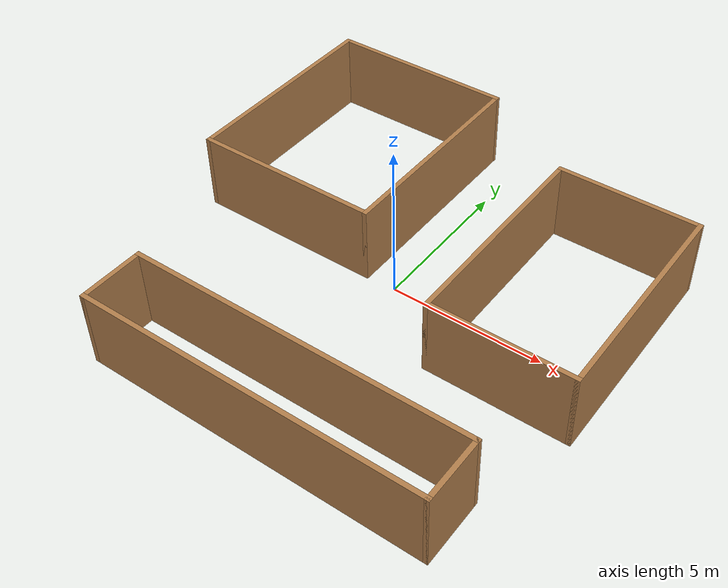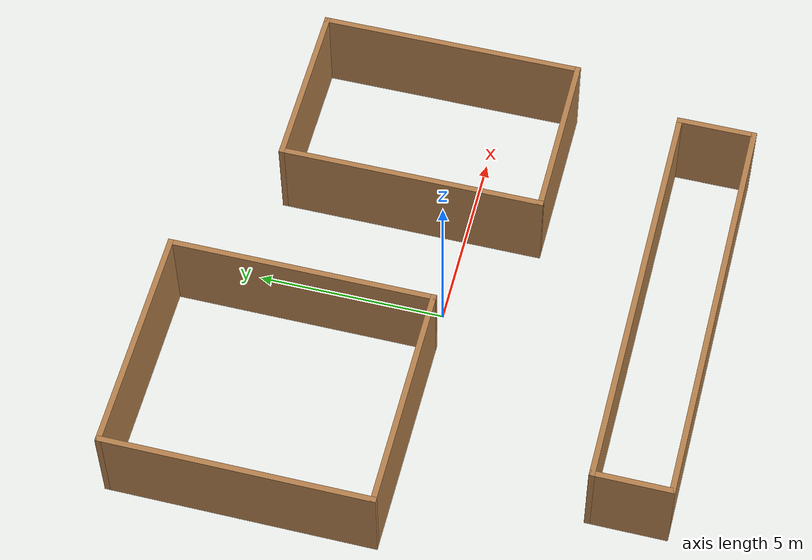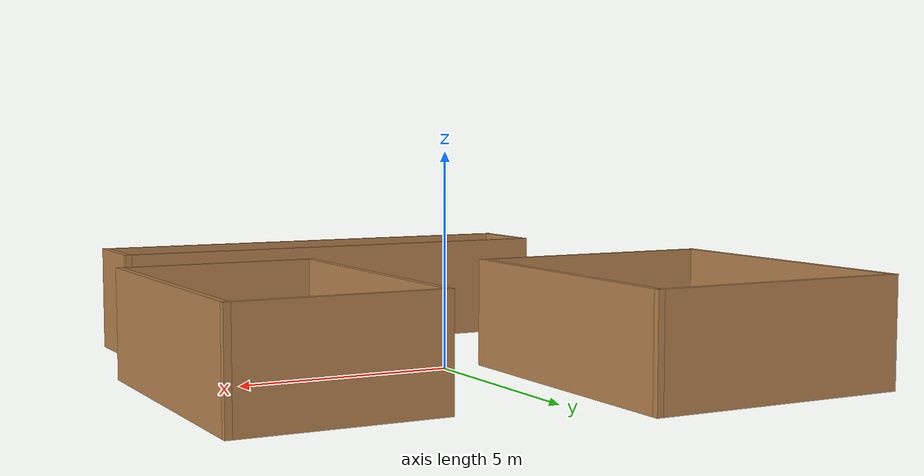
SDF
<?xml version='1.0'?>
<sdf version='1.6'>
  <model name='world3'>
    <pose frame=''>0 0 0 0 -0 0</pose>
    <link name='Wall_10'>
      <collision name='Wall_10_Collision'>
        <geometry>
          <box>
            <size>7 0.15 2.5</size>
          </box>
        </geometry>
        <pose frame=''>0 0 1.25 0 -0 0</pose>
      </collision>
      <visual name='Wall_10_Visual'>
        <pose frame=''>0 0 1.25 0 -0 0</pose>
        <geometry>
          <box>
            <size>7 0.15 2.5</size>
          </box>
        </geometry>
        <material>
          <script>
            <uri>file://media/materials/scripts/gazebo.material</uri>
            <name>Gazebo/Wood</name>
          </script>
          <ambient>1 1 1 1</ambient>
        </material>
        <meta>
          <layer>0</layer>
        </meta>
      </visual>
      <pose frame=''>2.5 1.425 0 0 -0 -1.5708</pose>
    </link>
    <link name='Wall_11'>
      <collision name='Wall_11_Collision'>
        <geometry>
          <box>
            <size>4.65 0.15 2.5</size>
          </box>
        </geometry>
        <pose frame=''>0 0 1.25 0 -0 0</pose>
      </collision>
      <visual name='Wall_11_Visual'>
        <pose frame=''>0 0 1.25 0 -0 0</pose>
        <geometry>
          <box>
            <size>4.65 0.15 2.5</size>
          </box>
        </geometry>
        <material>
          <script>
            <uri>file://media/materials/scripts/gazebo.material</uri>
            <name>Gazebo/Wood</name>
          </script>
          <ambient>1 1 1 1</ambient>
        </material>
        <meta>
          <layer>0</layer>
        </meta>
      </visual>
      <pose frame=''>4.75 -2 0 0 -0 0</pose>
    </link>
    <link name='Wall_12'>
      <collision name='Wall_12_Collision'>
        <geometry>
          <box>
            <size>7.15 0.15 2.5</size>
          </box>
        </geometry>
        <pose frame=''>0 0 1.25 0 -0 0</pose>
      </collision>
      <visual name='Wall_12_Visual'>
        <pose frame=''>0 0 1.25 0 -0 0</pose>
        <geometry>
          <box>
            <size>7.15 0.15 2.5</size>
          </box>
        </geometry>
        <material>
          <script>
            <uri>file://media/materials/scripts/gazebo.material</uri>
            <name>Gazebo/Wood</name>
          </script>
          <ambient>1 1 1 1</ambient>
        </material>
        <meta>
          <layer>0</layer>
        </meta>
      </visual>
      <pose frame=''>7 1.5 0 0 -0 1.5708</pose>
    </link>
    <link name='Wall_13'>
      <collision name='Wall_13_Collision'>
        <geometry>
          <box>
            <size>4.65 0.15 2.5</size>
          </box>
        </geometry>
        <pose frame=''>0 0 1.25 0 -0 0</pose>
      </collision>
      <visual name='Wall_13_Visual'>
        <pose frame=''>0 0 1.25 0 -0 0</pose>
        <geometry>
          <box>
            <size>4.65 0.15 2.5</size>
          </box>
        </geometry>
        <material>
          <script>
            <uri>file://media/materials/scripts/gazebo.material</uri>
            <name>Gazebo/Wood</name>
          </script>
          <ambient>1 1 1 1</ambient>
        </material>
        <meta>
          <layer>0</layer>
        </meta>
      </visual>
      <pose frame=''>4.75 5 0 0 -0 3.14159</pose>
    </link>
    <link name='Wall_15'>
      <collision name='Wall_15_Collision'>
        <geometry>
          <box>
            <size>2.15 0.15 2.5</size>
          </box>
        </geometry>
        <pose frame=''>0 0 1.25 0 -0 0</pose>
      </collision>
      <visual name='Wall_15_Visual'>
        <pose frame=''>0 0 1.25 0 -0 0</pose>
        <geometry>
          <box>
            <size>2.15 0.15 2.5</size>
          </box>
        </geometry>
        <material>
          <script>
            <uri>file://media/materials/scripts/gazebo.material</uri>
            <name>Gazebo/Wood</name>
          </script>
          <ambient>1 1 1 1</ambient>
        </material>
        <meta>
          <layer>0</layer>
        </meta>
      </visual>
      <pose frame=''>-5 -6 0 0 -0 -1.5708</pose>
    </link>
    <link name='Wall_16'>
      <collision name='Wall_16_Collision'>
        <geometry>
          <box>
            <size>11.15 0.15 2.5</size>
          </box>
        </geometry>
        <pose frame=''>0 0 1.25 0 -0 0</pose>
      </collision>
      <visual name='Wall_16_Visual'>
        <pose frame=''>0 0 1.25 0 -0 0</pose>
        <geometry>
          <box>
            <size>11.15 0.15 2.5</size>
          </box>
        </geometry>
        <material>
          <script>
            <uri>file://media/materials/scripts/gazebo.material</uri>
            <name>Gazebo/Wood</name>
          </script>
          <ambient>1 1 1 1</ambient>
        </material>
        <meta>
          <layer>0</layer>
        </meta>
      </visual>
      <pose frame=''>0.5 -7 0 0 -0 0</pose>
    </link>
    <link name='Wall_17'>
      <collision name='Wall_17_Collision'>
        <geometry>
          <box>
            <size>2.15 0.15 2.5</size>
          </box>
        </geometry>
        <pose frame=''>0 0 1.25 0 -0 0</pose>
      </collision>
      <visual name='Wall_17_Visual'>
        <pose frame=''>0 0 1.25 0 -0 0</pose>
        <geometry>
          <box>
            <size>2.15 0.15 2.5</size>
          </box>
        </geometry>
        <material>
          <script>
            <uri>file://media/materials/scripts/gazebo.material</uri>
            <name>Gazebo/Wood</name>
          </script>
          <ambient>1 1 1 1</ambient>
        </material>
        <meta>
          <layer>0</layer>
        </meta>
      </visual>
      <pose frame=''>6 -6 0 0 -0 1.5708</pose>
    </link>
    <link name='Wall_18'>
      <collision name='Wall_18_Collision'>
        <geometry>
          <box>
            <size>11.15 0.15 2.5</size>
          </box>
        </geometry>
        <pose frame=''>0 0 1.25 0 -0 0</pose>
      </collision>
      <visual name='Wall_18_Visual'>
        <pose frame=''>0 0 1.25 0 -0 0</pose>
        <geometry>
          <box>
            <size>11.15 0.15 2.5</size>
          </box>
        </geometry>
        <material>
          <script>
            <uri>file://media/materials/scripts/gazebo.material</uri>
            <name>Gazebo/Wood</name>
          </script>
          <ambient>1 1 1 1</ambient>
        </material>
        <meta>
          <layer>0</layer>
        </meta>
      </visual>
      <pose frame=''>0.5 -5 0 0 -0 3.14159</pose>
    </link>
    <link name='Wall_5'>
      <collision name='Wall_5_Collision'>
        <geometry>
          <box>
            <size>7.15 0.15 2.5</size>
          </box>
        </geometry>
        <pose frame=''>0 0 1.25 0 -0 0</pose>
      </collision>
      <visual name='Wall_5_Visual'>
        <pose frame=''>0 0 1.25 0 -0 0</pose>
        <geometry>
          <box>
            <size>7.15 0.15 2.5</size>
          </box>
        </geometry>
        <material>
          <script>
            <uri>file://media/materials/scripts/gazebo.material</uri>
            <name>Gazebo/Wood</name>
          </script>
          <ambient>1 1 1 1</ambient>
        </material>
        <meta>
          <layer>0</layer>
        </meta>
      </visual>
      <pose frame=''>-7 3.5 0 0 -0 -1.5708</pose>
    </link>
    <link name='Wall_6'>
      <collision name='Wall_6_Collision'>
        <geometry>
          <box>
            <size>6.15 0.15 2.5</size>
          </box>
        </geometry>
        <pose frame=''>0 0 1.25 0 -0 0</pose>
      </collision>
      <visual name='Wall_6_Visual'>
        <pose frame=''>0 0 1.25 0 -0 0</pose>
        <geometry>
          <box>
            <size>6.15 0.15 2.5</size>
          </box>
        </geometry>
        <material>
          <script>
            <uri>file://media/materials/scripts/gazebo.material</uri>
            <name>Gazebo/Wood</name>
          </script>
          <ambient>1 1 1 1</ambient>
        </material>
        <meta>
          <layer>0</layer>
        </meta>
      </visual>
      <pose frame=''>-4 -0 0 0 -0 0</pose>
    </link>
    <link name='Wall_7'>
      <collision name='Wall_7_Collision'>
        <geometry>
          <box>
            <size>7.15 0.15 2.5</size>
          </box>
        </geometry>
        <pose frame=''>0 0 1.25 0 -0 0</pose>
      </collision>
      <visual name='Wall_7_Visual'>
        <pose frame=''>0 0 1.25 0 -0 0</pose>
        <geometry>
          <box>
            <size>7.15 0.15 2.5</size>
          </box>
        </geometry>
        <material>
          <script>
            <uri>file://media/materials/scripts/gazebo.material</uri>
            <name>Gazebo/Wood</name>
          </script>
          <ambient>1 1 1 1</ambient>
        </material>
        <meta>
          <layer>0</layer>
        </meta>
      </visual>
      <pose frame=''>-1 3.5 0 0 -0 1.5708</pose>
    </link>
    <link name='Wall_8'>
      <collision name='Wall_8_Collision'>
        <geometry>
          <box>
            <size>6.15 0.15 2.5</size>
          </box>
        </geometry>
        <pose frame=''>0 0 1.25 0 -0 0</pose>
      </collision>
      <visual name='Wall_8_Visual'>
        <pose frame=''>0 0 1.25 0 -0 0</pose>
        <geometry>
          <box>
            <size>6.15 0.15 2.5</size>
          </box>
        </geometry>
        <material>
          <script>
            <uri>file://media/materials/scripts/gazebo.material</uri>
            <name>Gazebo/Wood</name>
          </script>
          <ambient>0.760784 0.662745 0.627451 1</ambient>
        </material>
        <meta>
          <layer>0</layer>
        </meta>
      </visual>
      <pose frame=''>-4 7 0 0 -0 3.14159</pose>
    </link>
    <static>1</static>
  </model>
</sdf>
